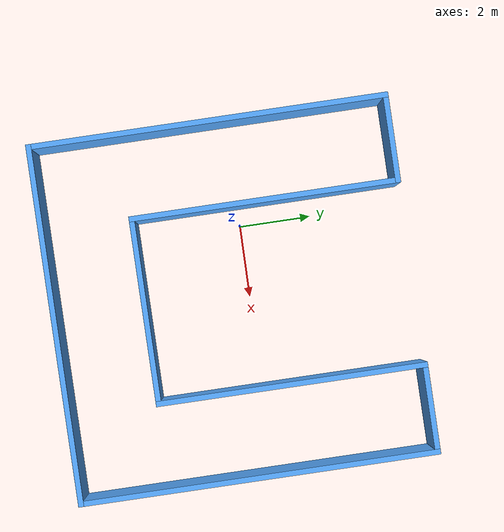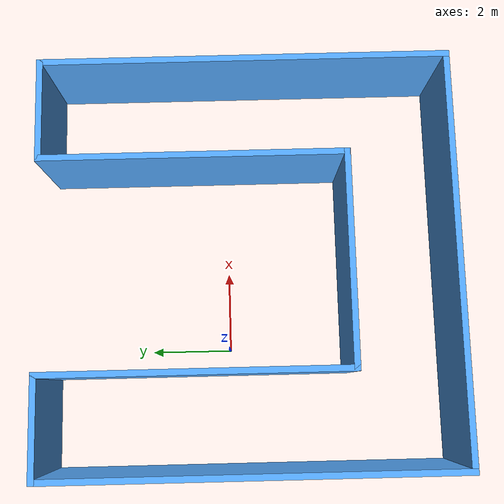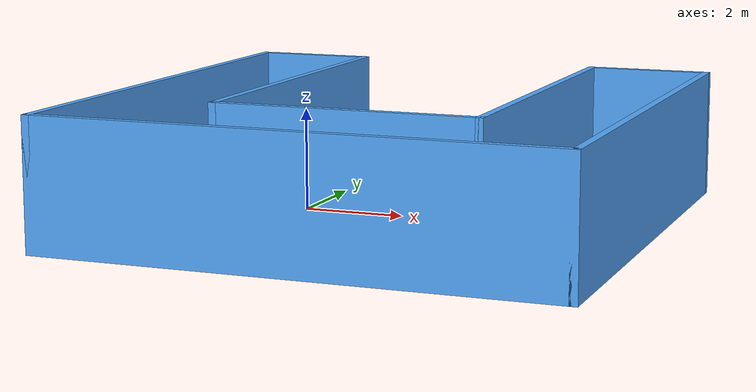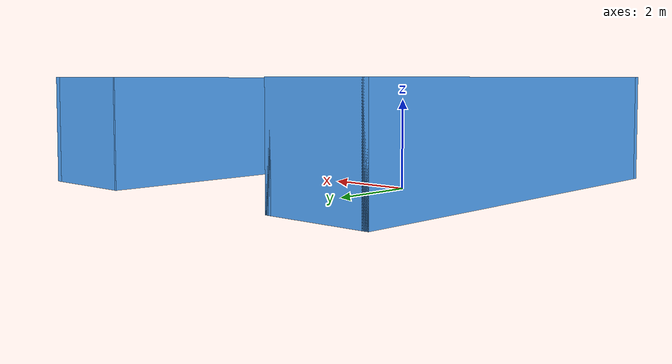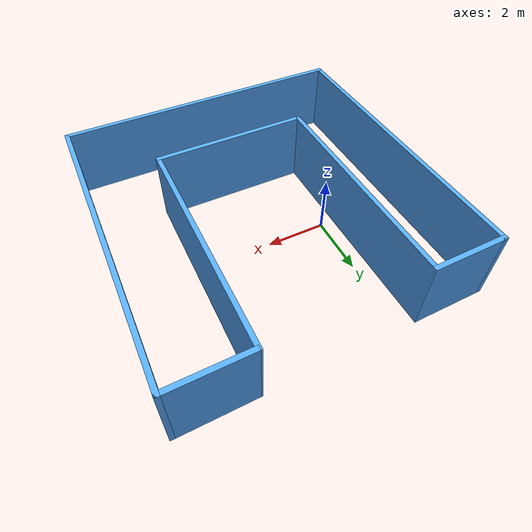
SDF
<?xml version='1.0'?>
<sdf version='1.6'>
  <model name='MyWorld'>
    <pose frame=''>2.015 -0.485 0 0 -0 0</pose>
    <link name='Wall_0'>
      <collision name='Wall_0_Collision'>
        <geometry>
          <box>
            <size>10 0.15 2.5</size>
          </box>
        </geometry>
        <pose frame=''>0 0 1.25 0 -0 0</pose>
      </collision>
      <visual name='Wall_0_Visual'>
        <pose frame=''>0 0 1.25 0 -0 0</pose>
        <geometry>
          <box>
            <size>10 0.15 2.5</size>
          </box>
        </geometry>
        <material>
          <script>
            <uri>file://media/materials/scripts/gazebo.material</uri>
            <name>Gazebo/Grey</name>
          </script>
          <ambient>0.333333 0.666667 1 1</ambient>
        </material>
      </visual>
      <pose frame=''>0 -4.925 0 0 -0 0</pose>
    </link>
    <link name='Wall_1'>
      <collision name='Wall_1_Collision'>
        <geometry>
          <box>
            <size>10 0.15 2.5</size>
          </box>
        </geometry>
        <pose frame=''>0 0 1.25 0 -0 0</pose>
      </collision>
      <visual name='Wall_1_Visual'>
        <pose frame=''>0 0 1.25 0 -0 0</pose>
        <geometry>
          <box>
            <size>10 0.15 2.5</size>
          </box>
        </geometry>
        <material>
          <script>
            <uri>file://media/materials/scripts/gazebo.material</uri>
            <name>Gazebo/Grey</name>
          </script>
          <ambient>0.333333 0.666667 1 1</ambient>
        </material>
      </visual>
      <pose frame=''>4.925 0 0 0 -0 1.5708</pose>
    </link>
    <link name='Wall_10'>
      <collision name='Wall_10_Collision'>
        <geometry>
          <box>
            <size>7.5 0.15 2.5</size>
          </box>
        </geometry>
        <pose frame=''>0 0 1.25 0 -0 0</pose>
      </collision>
      <visual name='Wall_10_Visual'>
        <pose frame=''>0 0 1.25 0 -0 0</pose>
        <geometry>
          <box>
            <size>7.5 0.15 2.5</size>
          </box>
        </geometry>
        <material>
          <script>
            <uri>file://media/materials/scripts/gazebo.material</uri>
            <name>Gazebo/Grey</name>
          </script>
          <ambient>0.333333 0.666667 1 1</ambient>
        </material>
      </visual>
      <pose frame=''>2.525 1.25 0 0 -0 1.5708</pose>
    </link>
    <link name='Wall_4'>
      <collision name='Wall_4_Collision'>
        <geometry>
          <box>
            <size>2.5 0.15 2.5</size>
          </box>
        </geometry>
        <pose frame=''>0 0 1.25 0 -0 0</pose>
      </collision>
      <visual name='Wall_4_Visual'>
        <pose frame=''>0 0 1.25 0 -0 0</pose>
        <geometry>
          <box>
            <size>2.5 0.15 2.5</size>
          </box>
        </geometry>
        <material>
          <script>
            <uri>file://media/materials/scripts/gazebo.material</uri>
            <name>Gazebo/Grey</name>
          </script>
          <ambient>0.333333 0.666667 1 1</ambient>
        </material>
      </visual>
      <pose frame=''>3.75 4.925 0 0 -0 3.14159</pose>
    </link>
    <link name='Wall_6'>
      <collision name='Wall_6_Collision'>
        <geometry>
          <box>
            <size>10 0.15 2.5</size>
          </box>
        </geometry>
        <pose frame=''>0 0 1.25 0 -0 0</pose>
      </collision>
      <visual name='Wall_6_Visual'>
        <pose frame=''>0 0 1.25 0 -0 0</pose>
        <geometry>
          <box>
            <size>10 0.15 2.5</size>
          </box>
        </geometry>
        <material>
          <script>
            <uri>file://media/materials/scripts/gazebo.material</uri>
            <name>Gazebo/Grey</name>
          </script>
          <ambient>0.333333 0.666667 1 1</ambient>
        </material>
      </visual>
      <pose frame=''>-4.925 0 0 0 -0 1.5708</pose>
    </link>
    <link name='Wall_7'>
      <collision name='Wall_7_Collision'>
        <geometry>
          <box>
            <size>2.5 0.15 2.5</size>
          </box>
        </geometry>
        <pose frame=''>0 0 1.25 0 -0 0</pose>
      </collision>
      <visual name='Wall_7_Visual'>
        <pose frame=''>0 0 1.25 0 -0 0</pose>
        <geometry>
          <box>
            <size>2.5 0.15 2.5</size>
          </box>
        </geometry>
        <material>
          <script>
            <uri>file://media/materials/scripts/gazebo.material</uri>
            <name>Gazebo/Grey</name>
          </script>
          <ambient>0.333333 0.666667 1 1</ambient>
        </material>
      </visual>
      <pose frame=''>-3.75 4.925 0 0 -0 0</pose>
    </link>
    <link name='Wall_8'>
      <collision name='Wall_8_Collision'>
        <geometry>
          <box>
            <size>7.5 0.15 2.5</size>
          </box>
        </geometry>
        <pose frame=''>0 0 1.25 0 -0 0</pose>
      </collision>
      <visual name='Wall_8_Visual'>
        <pose frame=''>0 0 1.25 0 -0 0</pose>
        <geometry>
          <box>
            <size>7.5 0.15 2.5</size>
          </box>
        </geometry>
        <material>
          <script>
            <uri>file://media/materials/scripts/gazebo.material</uri>
            <name>Gazebo/Grey</name>
          </script>
          <ambient>0.333333 0.666667 1 1</ambient>
        </material>
      </visual>
      <pose frame=''>-2.575 1.25 0 0 0 -1.5708</pose>
    </link>
    <link name='Wall_9'>
      <collision name='Wall_9_Collision'>
        <geometry>
          <box>
            <size>5.25 0.15 2.5</size>
          </box>
        </geometry>
        <pose frame=''>0 0 1.25 0 -0 0</pose>
      </collision>
      <visual name='Wall_9_Visual'>
        <pose frame=''>0 0 1.25 0 -0 0</pose>
        <geometry>
          <box>
            <size>5.25 0.15 2.5</size>
          </box>
        </geometry>
        <material>
          <script>
            <uri>file://media/materials/scripts/gazebo.material</uri>
            <name>Gazebo/Grey</name>
          </script>
          <ambient>0.333333 0.666667 1 1</ambient>
        </material>
      </visual>
      <pose frame=''>-0.025 -2.425 0 0 -0 0</pose>
    </link>
    <static>1</static>
  </model>
</sdf>
